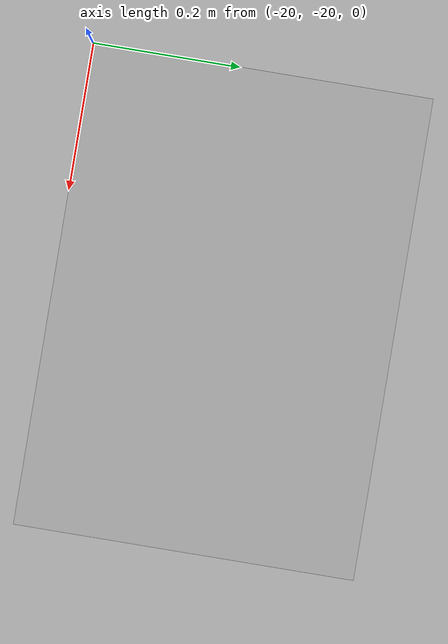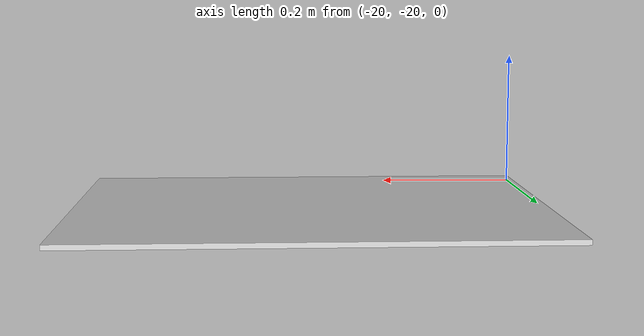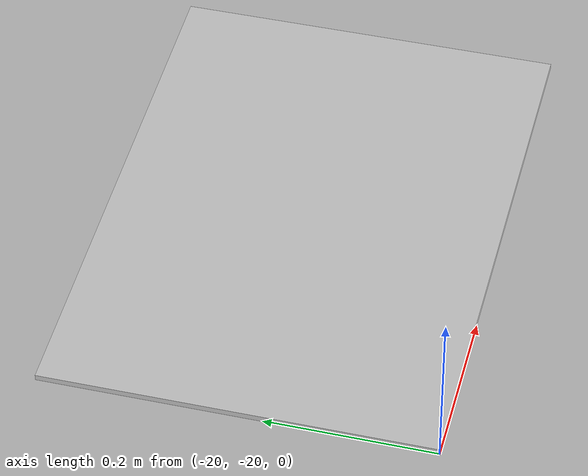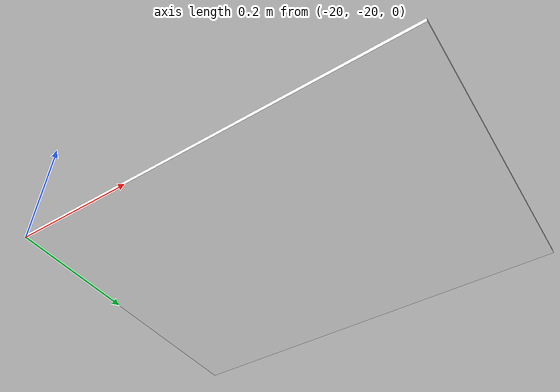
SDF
<?xml version="1.0" ?>
<sdf version="1.5">
  <model name="check_board_precise">
    <static>true</static>
    <pose>-20 -20 0 0 0 0</pose>
    <link name="board">
      <collision name="collision">
        <geometry>
          <mesh>
            <uri>model://check_board_2times/meshes/check_board_2times_collision.dae</uri>
          </mesh>
        </geometry>
      </collision>
      <visual name="visual">
        <geometry>
          <mesh>
            <uri>model://check_board_2times/meshes/check_board_2times.dae</uri>
          </mesh>
        </geometry>
        <cast_shadows>false</cast_shadows>
      </visual>
    </link>
  </model>
</sdf>
